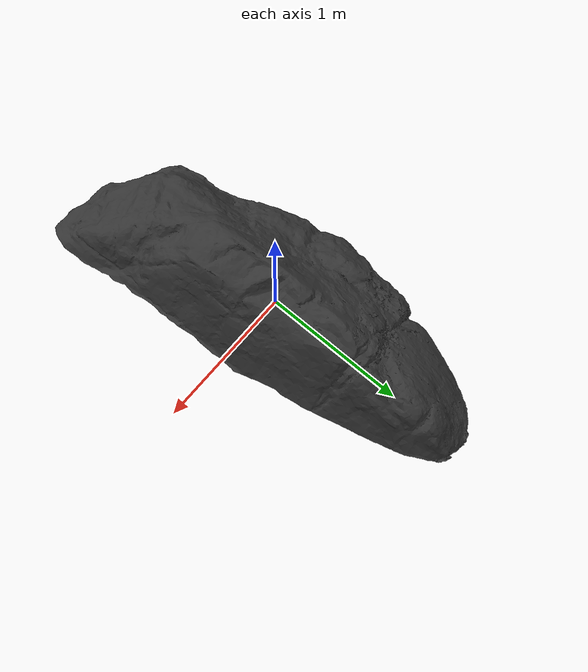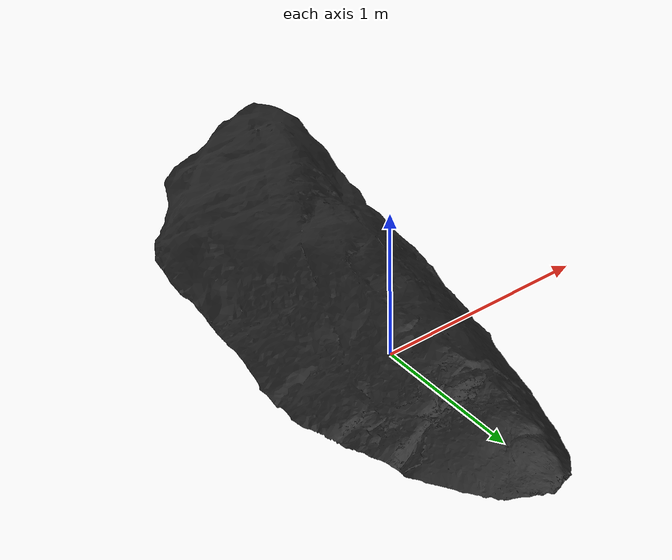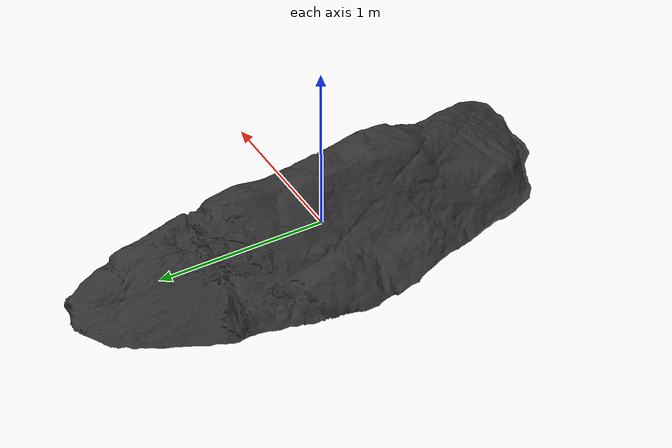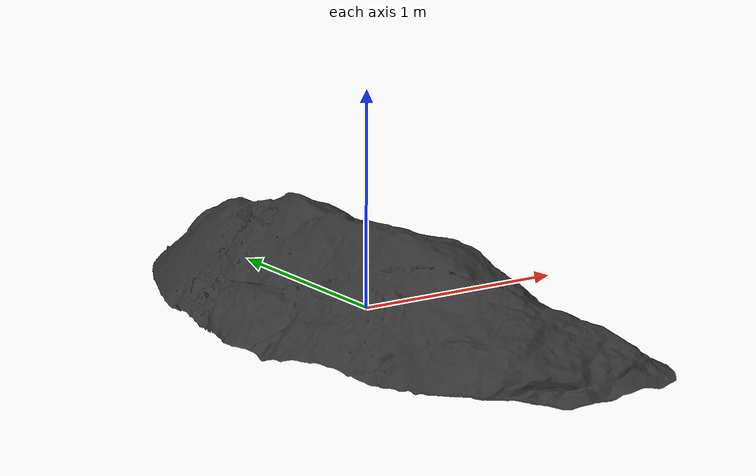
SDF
<?xml version="1.0" ?>
<sdf version='1.6'>
  <model name="qr_rock1">

    <static>true</static>

    <link name="qr_rock1_link">

    <visual name="link0_visual">
        <geometry>
          <mesh>
            <uri>package://lunar_local_planning/worlds/models/plane_rocks/qr_rock1/meshes/qr_rock1.dae</uri>
            <scale>0.5 0.5 0.5</scale>
          </mesh>
        </geometry>
        <material>
          <diffuse>0.2 0.2 0.2</diffuse>
          <specular>0.2 0.2 0.2</specular>
          <pbr>
            <metal>
              <albedo_map>package://lunar_local_planning/worlds/models/plane_rocks/qr_rock1/meshes/textures/qr_rock1_diffuse.png</albedo_map>
            </metal>
          </pbr>
        </material>
      </visual>

      <collision name="qr_rock1_colission">
        <geometry>
          <mesh>
            <uri>package://lunar_local_planning/worlds/models/plane_rocks/qr_rock1/meshes/qr_rock1.dae</uri>
            <scale>0.5 0.5 0.5</scale>
          </mesh>
        </geometry>
        <max_contacts>10</max_contacts>
        <surface>
          <bounce/>
          <friction>
            <ode/>
          </friction>
          <contact>
            <ode/>
          </contact>
        </surface>
      </collision>

    </link>

  </model>
</sdf>
